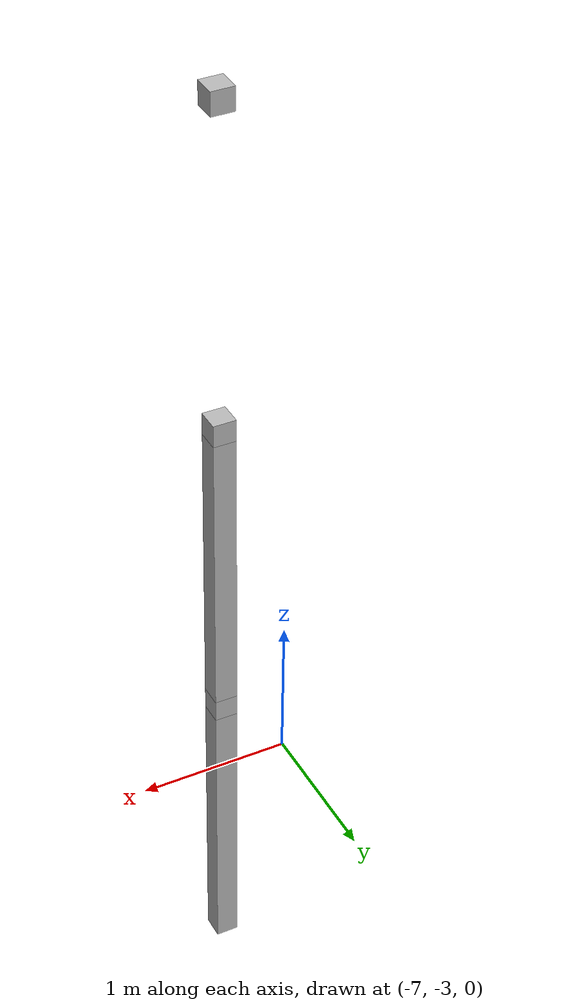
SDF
<sdf version="1.7">
 <world name="default">
  <model name="orthogonal_747_2.000.15_TS">
   <static>1</static>
   <link name="u_link_1_1_0">
    <inertial>
     <mass>1</mass>
     <inertia>
      <ixx>0.166667</ixx>
      <ixy>0</ixy>
      <ixz>0</ixz>
      <iyy>0.166667</iyy>
      <iyz>0</iyz>
      <izz>0.166667</izz>
     </inertia>
    </inertial>
    <pose>0 2.15 3.225 0 -0 0</pose>
    <visual name="visual_0">
     <laser_retro>981</laser_retro>
     <geometry><box><size>0.15 1e-06 0.15</size></box></geometry>
     <material>
      <script><name>Gazebo/Grey</name><uri>file://media/materials/scripts/gazebo.material</uri></script>
      <shader type="pixel"><normal_map>__default__</normal_map></shader>
      <ambient>0.678 0.498 0.659 1</ambient>
      <diffuse>0.7 0.7 0.7 1</diffuse>
      <specular>0.01 0.01 0.01 1</specular>
      <emissive>0 0 0 1</emissive>
     </material>
     <pose>0 -0.075 0 0 -0 0</pose>
     <transparency>1</transparency>
    </visual>
    <visual name="visual_1">
     <laser_retro>982</laser_retro>
     <geometry><box><size>0.15 1e-06 0.15</size></box></geometry>
     <material>
      <script><name>Gazebo/Grey</name><uri>file://media/materials/scripts/gazebo.material</uri></script>
      <shader type="pixel"><normal_map>__default__</normal_map></shader>
      <ambient>0.447 0.624 0.812 1</ambient>
      <diffuse>0.7 0.7 0.7 1</diffuse>
      <specular>0.01 0.01 0.01 1</specular>
      <emissive>0 0 0 1</emissive>
     </material>
     <pose>0 0.075 0 0 -0 0</pose>
     <transparency>1</transparency>
    </visual>
    <visual name="visual_2">
     <laser_retro>983</laser_retro>
     <geometry><box><size>0.15 0.15 1e-06</size></box></geometry>
     <material>
      <script><name>Gazebo/Grey</name><uri>file://media/materials/scripts/gazebo.material</uri></script>
      <shader type="pixel"><normal_map>__default__</normal_map></shader>
      <ambient>0.988 0.686 0.243 1</ambient>
      <diffuse>0.7 0.7 0.7 1</diffuse>
      <specular>0.01 0.01 0.01 1</specular>
      <emissive>0 0 0 1</emissive>
     </material>
     <pose>0 0 -0.075 0 -0 0</pose>
     <transparency>1</transparency>
    </visual>
    <visual name="visual_3">
     <laser_retro>984</laser_retro>
     <geometry><box><size>1e-06 0.15 0.15</size></box></geometry>
     <material>
      <script><name>Gazebo/Grey</name><uri>file://media/materials/scripts/gazebo.material</uri></script>
      <shader type="pixel"><normal_map>__default__</normal_map></shader>
      <ambient>0.988 0.914 0.31 1</ambient>
      <diffuse>0.7 0.7 0.7 1</diffuse>
      <specular>0.01 0.01 0.01 1</specular>
      <emissive>0 0 0 1</emissive>
     </material>
     <pose>0.075 0 0 0 -0 0</pose>
     <transparency>1</transparency>
    </visual>
    <visual name="visual_4">
     <laser_retro>985</laser_retro>
     <geometry><box><size>0.15 0.15 1e-06</size></box></geometry>
     <material>
      <script><name>Gazebo/Grey</name><uri>file://media/materials/scripts/gazebo.material</uri></script>
      <shader type="pixel"><normal_map>__default__</normal_map></shader>
      <ambient>0.937 0.161 0.161 1</ambient>
      <diffuse>0.7 0.7 0.7 1</diffuse>
      <specular>0.01 0.01 0.01 1</specular>
      <emissive>0 0 0 1</emissive>
     </material>
     <pose>0 0 0.075 0 -0 0</pose>
     <transparency>1</transparency>
    </visual>
    <visual name="visual_5">
     <laser_retro>986</laser_retro>
     <geometry><box><size>1e-06 0.15 0.15</size></box></geometry>
     <material>
      <script><name>Gazebo/Grey</name><uri>file://media/materials/scripts/gazebo.material</uri></script>
      <shader type="pixel"><normal_map>__default__</normal_map></shader>
      <ambient>0.541 0.886 0.204 1</ambient>
      <diffuse>0.7 0.7 0.7 1</diffuse>
      <specular>0.01 0.01 0.01 1</specular>
      <emissive>0 0 0 1</emissive>
     </material>
     <pose>-0.075 0 0 0 -0 0</pose>
     <transparency>1</transparency>
    </visual>
    <visual name="visual_texture">
     <geometry><box><size>0.149985 0.149985 0.149985</size></box></geometry>
     <material>
      <script>
       <uri>model://BASE_MODELS/simple_block_v2_textured/materials/scripts</uri>
       <uri>model://BASE_MODELS/simple_block_v2_textured/materials/textures</uri>
       <name>metal</name>
      </script>
     </material>
     <laser_retro>987</laser_retro>
    </visual>
    <collision name="collision">
     <geometry><box><size>0.15 0.15 0.15</size></box></geometry>
     <surface>
      <friction>
       <ode><mu>1</mu><mu2>1</mu2><fdir1>0 0 0</fdir1><slip1>0</slip1><slip2>0</slip2></ode>
       <torsional>
        <coefficient>1</coefficient>
        <patch_radius>0</patch_radius>
        <surface_radius>0</surface_radius>
        <use_patch_radius>1</use_patch_radius>
        <ode><slip>0</slip></ode>
       </torsional>
      </friction>
      <bounce><restitution_coefficient>0</restitution_coefficient><threshold>1e+06</threshold></bounce>
      <contact>
       <collide_without_contact>0</collide_without_contact>
       <collide_without_contact_bitmask>1</collide_without_contact_bitmask>
       <collide_bitmask>1</collide_bitmask>
       <ode>
        <soft_cfm>0</soft_cfm>
        <soft_erp>0.2</soft_erp>
        <kp>1e+13</kp>
        <kd>1</kd>
        <max_vel>0.01</max_vel>
        <min_depth>0</min_depth>
       </ode>
       <bullet>
        <split_impulse>1</split_impulse>
        <split_impulse_penetration_threshold>-0.01</split_impulse_penetration_threshold>
        <soft_cfm>0</soft_cfm>
        <soft_erp>0.2</soft_erp>
        <kp>1e+13</kp>
        <kd>1</kd>
       </bullet>
      </contact>
     </surface>
    </collision>
   </link>
   <link name="z_link_1_1_0">
    <inertial>
     <mass>1</mass>
     <inertia>
      <ixx>0.166667</ixx>
      <ixy>0</ixy>
      <ixz>0</ixz>
      <iyy>0.166667</iyy>
      <iyz>0</iyz>
      <izz>0.166667</izz>
     </inertia>
    </inertial>
    <pose>0 2.15 2.15 0 -0 0</pose>
    <visual name="visual_0">
     <laser_retro>988</laser_retro>
     <geometry><box><size>0.15 1e-06 2</size></box></geometry>
     <material>
      <script><name>Gazebo/Grey</name><uri>file://media/materials/scripts/gazebo.material</uri></script>
      <shader type="pixel"><normal_map>__default__</normal_map></shader>
      <ambient>0.678 0.498 0.659 1</ambient>
      <diffuse>0.7 0.7 0.7 1</diffuse>
      <specular>0.01 0.01 0.01 1</specular>
      <emissive>0 0 0 1</emissive>
     </material>
     <pose>0 -0.075 0 0 -0 0</pose>
     <transparency>1</transparency>
    </visual>
    <visual name="visual_1">
     <laser_retro>989</laser_retro>
     <geometry><box><size>0.15 1e-06 2</size></box></geometry>
     <material>
      <script><name>Gazebo/Grey</name><uri>file://media/materials/scripts/gazebo.material</uri></script>
      <shader type="pixel"><normal_map>__default__</normal_map></shader>
      <ambient>0.447 0.624 0.812 1</ambient>
      <diffuse>0.7 0.7 0.7 1</diffuse>
      <specular>0.01 0.01 0.01 1</specular>
      <emissive>0 0 0 1</emissive>
     </material>
     <pose>0 0.075 0 0 -0 0</pose>
     <transparency>1</transparency>
    </visual>
    <visual name="visual_2">
     <laser_retro>990</laser_retro>
     <geometry><box><size>0.15 0.15 1e-06</size></box></geometry>
     <material>
      <script><name>Gazebo/Grey</name><uri>file://media/materials/scripts/gazebo.material</uri></script>
      <shader type="pixel"><normal_map>__default__</normal_map></shader>
      <ambient>0.988 0.686 0.243 1</ambient>
      <diffuse>0.7 0.7 0.7 1</diffuse>
      <specular>0.01 0.01 0.01 1</specular>
      <emissive>0 0 0 1</emissive>
     </material>
     <pose>0 0 -1 0 -0 0</pose>
     <transparency>1</transparency>
    </visual>
    <visual name="visual_3">
     <laser_retro>991</laser_retro>
     <geometry><box><size>1e-06 0.15 2</size></box></geometry>
     <material>
      <script><name>Gazebo/Grey</name><uri>file://media/materials/scripts/gazebo.material</uri></script>
      <shader type="pixel"><normal_map>__default__</normal_map></shader>
      <ambient>0.988 0.914 0.31 1</ambient>
      <diffuse>0.7 0.7 0.7 1</diffuse>
      <specular>0.01 0.01 0.01 1</specular>
      <emissive>0 0 0 1</emissive>
     </material>
     <pose>0.075 0 0 0 -0 0</pose>
     <transparency>1</transparency>
    </visual>
    <visual name="visual_4">
     <laser_retro>992</laser_retro>
     <geometry><box><size>0.15 0.15 1e-06</size></box></geometry>
     <material>
      <script><name>Gazebo/Grey</name><uri>file://media/materials/scripts/gazebo.material</uri></script>
      <shader type="pixel"><normal_map>__default__</normal_map></shader>
      <ambient>0.937 0.161 0.161 1</ambient>
      <diffuse>0.7 0.7 0.7 1</diffuse>
      <specular>0.01 0.01 0.01 1</specular>
      <emissive>0 0 0 1</emissive>
     </material>
     <pose>0 0 1 0 -0 0</pose>
     <transparency>1</transparency>
    </visual>
    <visual name="visual_5">
     <laser_retro>993</laser_retro>
     <geometry><box><size>1e-06 0.15 2</size></box></geometry>
     <material>
      <script><name>Gazebo/Grey</name><uri>file://media/materials/scripts/gazebo.material</uri></script>
      <shader type="pixel"><normal_map>__default__</normal_map></shader>
      <ambient>0.541 0.886 0.204 1</ambient>
      <diffuse>0.7 0.7 0.7 1</diffuse>
      <specular>0.01 0.01 0.01 1</specular>
      <emissive>0 0 0 1</emissive>
     </material>
     <pose>-0.075 0 0 0 -0 0</pose>
     <transparency>1</transparency>
    </visual>
    <visual name="visual_texture">
     <geometry><box><size>0.149985 0.149985 1.9998</size></box></geometry>
     <material>
      <script>
       <uri>model://BASE_MODELS/simple_block_v2_textured/materials/scripts</uri>
       <uri>model://BASE_MODELS/simple_block_v2_textured/materials/textures</uri>
       <name>metal</name>
      </script>
     </material>
     <laser_retro>994</laser_retro>
    </visual>
    <collision name="collision">
     <geometry><box><size>0.15 0.15 2</size></box></geometry>
     <surface>
      <friction>
       <ode><mu>1</mu><mu2>1</mu2><fdir1>0 0 0</fdir1><slip1>0</slip1><slip2>0</slip2></ode>
       <torsional>
        <coefficient>1</coefficient>
        <patch_radius>0</patch_radius>
        <surface_radius>0</surface_radius>
        <use_patch_radius>1</use_patch_radius>
        <ode><slip>0</slip></ode>
       </torsional>
      </friction>
      <bounce><restitution_coefficient>0</restitution_coefficient><threshold>1e+06</threshold></bounce>
      <contact>
       <collide_without_contact>0</collide_without_contact>
       <collide_without_contact_bitmask>1</collide_without_contact_bitmask>
       <collide_bitmask>1</collide_bitmask>
       <ode>
        <soft_cfm>0</soft_cfm>
        <soft_erp>0.2</soft_erp>
        <kp>1e+13</kp>
        <kd>1</kd>
        <max_vel>0.01</max_vel>
        <min_depth>0</min_depth>
       </ode>
       <bullet>
        <split_impulse>1</split_impulse>
        <split_impulse_penetration_threshold>-0.01</split_impulse_penetration_threshold>
        <soft_cfm>0</soft_cfm>
        <soft_erp>0.2</soft_erp>
        <kp>1e+13</kp>
        <kd>1</kd>
       </bullet>
      </contact>
     </surface>
    </collision>
   </link>
   <link name="u_link_2_1_0">
    <inertial>
     <mass>1</mass>
     <inertia>
      <ixx>0.166667</ixx>
      <ixy>0</ixy>
      <ixz>0</ixz>
      <iyy>0.166667</iyy>
      <iyz>0</iyz>
      <izz>0.166667</izz>
     </inertia>
    </inertial>
    <pose>0 2.15 5.375 0 -0 0</pose>
    <visual name="visual_0">
     <laser_retro>1884</laser_retro>
     <geometry><box><size>0.15 1e-06 0.15</size></box></geometry>
     <material>
      <script><name>Gazebo/Grey</name><uri>file://media/materials/scripts/gazebo.material</uri></script>
      <shader type="pixel"><normal_map>__default__</normal_map></shader>
      <ambient>0.678 0.498 0.659 1</ambient>
      <diffuse>0.7 0.7 0.7 1</diffuse>
      <specular>0.01 0.01 0.01 1</specular>
      <emissive>0 0 0 1</emissive>
     </material>
     <pose>0 -0.075 0 0 -0 0</pose>
     <transparency>1</transparency>
    </visual>
    <visual name="visual_1">
     <laser_retro>1885</laser_retro>
     <geometry><box><size>0.15 1e-06 0.15</size></box></geometry>
     <material>
      <script><name>Gazebo/Grey</name><uri>file://media/materials/scripts/gazebo.material</uri></script>
      <shader type="pixel"><normal_map>__default__</normal_map></shader>
      <ambient>0.447 0.624 0.812 1</ambient>
      <diffuse>0.7 0.7 0.7 1</diffuse>
      <specular>0.01 0.01 0.01 1</specular>
      <emissive>0 0 0 1</emissive>
     </material>
     <pose>0 0.075 0 0 -0 0</pose>
     <transparency>1</transparency>
    </visual>
    <visual name="visual_2">
     <laser_retro>1886</laser_retro>
     <geometry><box><size>0.15 0.15 1e-06</size></box></geometry>
     <material>
      <script><name>Gazebo/Grey</name><uri>file://media/materials/scripts/gazebo.material</uri></script>
      <shader type="pixel"><normal_map>__default__</normal_map></shader>
      <ambient>0.988 0.686 0.243 1</ambient>
      <diffuse>0.7 0.7 0.7 1</diffuse>
      <specular>0.01 0.01 0.01 1</specular>
      <emissive>0 0 0 1</emissive>
     </material>
     <pose>0 0 -0.075 0 -0 0</pose>
     <transparency>1</transparency>
    </visual>
    <visual name="visual_3">
     <laser_retro>1887</laser_retro>
     <geometry><box><size>1e-06 0.15 0.15</size></box></geometry>
     <material>
      <script><name>Gazebo/Grey</name><uri>file://media/materials/scripts/gazebo.material</uri></script>
      <shader type="pixel"><normal_map>__default__</normal_map></shader>
      <ambient>0.988 0.914 0.31 1</ambient>
      <diffuse>0.7 0.7 0.7 1</diffuse>
      <specular>0.01 0.01 0.01 1</specular>
      <emissive>0 0 0 1</emissive>
     </material>
     <pose>0.075 0 0 0 -0 0</pose>
     <transparency>1</transparency>
    </visual>
    <visual name="visual_4">
     <laser_retro>1888</laser_retro>
     <geometry><box><size>0.15 0.15 1e-06</size></box></geometry>
     <material>
      <script><name>Gazebo/Grey</name><uri>file://media/materials/scripts/gazebo.material</uri></script>
      <shader type="pixel"><normal_map>__default__</normal_map></shader>
      <ambient>0.937 0.161 0.161 1</ambient>
      <diffuse>0.7 0.7 0.7 1</diffuse>
      <specular>0.01 0.01 0.01 1</specular>
      <emissive>0 0 0 1</emissive>
     </material>
     <pose>0 0 0.075 0 -0 0</pose>
     <transparency>1</transparency>
    </visual>
    <visual name="visual_5">
     <laser_retro>1889</laser_retro>
     <geometry><box><size>1e-06 0.15 0.15</size></box></geometry>
     <material>
      <script><name>Gazebo/Grey</name><uri>file://media/materials/scripts/gazebo.material</uri></script>
      <shader type="pixel"><normal_map>__default__</normal_map></shader>
      <ambient>0.541 0.886 0.204 1</ambient>
      <diffuse>0.7 0.7 0.7 1</diffuse>
      <specular>0.01 0.01 0.01 1</specular>
      <emissive>0 0 0 1</emissive>
     </material>
     <pose>-0.075 0 0 0 -0 0</pose>
     <transparency>1</transparency>
    </visual>
    <visual name="visual_texture">
     <geometry><box><size>0.149985 0.149985 0.149985</size></box></geometry>
     <material>
      <script>
       <uri>model://BASE_MODELS/simple_block_v2_textured/materials/scripts</uri>
       <uri>model://BASE_MODELS/simple_block_v2_textured/materials/textures</uri>
       <name>metal</name>
      </script>
     </material>
     <laser_retro>1890</laser_retro>
    </visual>
    <collision name="collision">
     <geometry><box><size>0.15 0.15 0.15</size></box></geometry>
     <surface>
      <friction>
       <ode><mu>1</mu><mu2>1</mu2><fdir1>0 0 0</fdir1><slip1>0</slip1><slip2>0</slip2></ode>
       <torsional>
        <coefficient>1</coefficient>
        <patch_radius>0</patch_radius>
        <surface_radius>0</surface_radius>
        <use_patch_radius>1</use_patch_radius>
        <ode><slip>0</slip></ode>
       </torsional>
      </friction>
      <bounce><restitution_coefficient>0</restitution_coefficient><threshold>1e+06</threshold></bounce>
      <contact>
       <collide_without_contact>0</collide_without_contact>
       <collide_without_contact_bitmask>1</collide_without_contact_bitmask>
       <collide_bitmask>1</collide_bitmask>
       <ode>
        <soft_cfm>0</soft_cfm>
        <soft_erp>0.2</soft_erp>
        <kp>1e+13</kp>
        <kd>1</kd>
        <max_vel>0.01</max_vel>
        <min_depth>0</min_depth>
       </ode>
       <bullet>
        <split_impulse>1</split_impulse>
        <split_impulse_penetration_threshold>-0.01</split_impulse_penetration_threshold>
        <soft_cfm>0</soft_cfm>
        <soft_erp>0.2</soft_erp>
        <kp>1e+13</kp>
        <kd>1</kd>
       </bullet>
      </contact>
     </surface>
    </collision>
   </link>
   <link name="z_link_2_1_0">
    <inertial>
     <mass>1</mass>
     <inertia>
      <ixx>0.166667</ixx>
      <ixy>0</ixy>
      <ixz>0</ixz>
      <iyy>0.166667</iyy>
      <iyz>0</iyz>
      <izz>0.166667</izz>
     </inertia>
    </inertial>
    <pose>0 2.15 4.3 0 -0 0</pose>
    <visual name="visual_0">
     <laser_retro>1891</laser_retro>
     <geometry><box><size>0.15 1e-06 2</size></box></geometry>
     <material>
      <script><name>Gazebo/Grey</name><uri>file://media/materials/scripts/gazebo.material</uri></script>
      <shader type="pixel"><normal_map>__default__</normal_map></shader>
      <ambient>0.678 0.498 0.659 1</ambient>
      <diffuse>0.7 0.7 0.7 1</diffuse>
      <specular>0.01 0.01 0.01 1</specular>
      <emissive>0 0 0 1</emissive>
     </material>
     <pose>0 -0.075 0 0 -0 0</pose>
     <transparency>1</transparency>
    </visual>
    <visual name="visual_1">
     <laser_retro>1892</laser_retro>
     <geometry><box><size>0.15 1e-06 2</size></box></geometry>
     <material>
      <script><name>Gazebo/Grey</name><uri>file://media/materials/scripts/gazebo.material</uri></script>
      <shader type="pixel"><normal_map>__default__</normal_map></shader>
      <ambient>0.447 0.624 0.812 1</ambient>
      <diffuse>0.7 0.7 0.7 1</diffuse>
      <specular>0.01 0.01 0.01 1</specular>
      <emissive>0 0 0 1</emissive>
     </material>
     <pose>0 0.075 0 0 -0 0</pose>
     <transparency>1</transparency>
    </visual>
    <visual name="visual_2">
     <laser_retro>1893</laser_retro>
     <geometry><box><size>0.15 0.15 1e-06</size></box></geometry>
     <material>
      <script><name>Gazebo/Grey</name><uri>file://media/materials/scripts/gazebo.material</uri></script>
      <shader type="pixel"><normal_map>__default__</normal_map></shader>
      <ambient>0.988 0.686 0.243 1</ambient>
      <diffuse>0.7 0.7 0.7 1</diffuse>
      <specular>0.01 0.01 0.01 1</specular>
      <emissive>0 0 0 1</emissive>
     </material>
     <pose>0 0 -1 0 -0 0</pose>
     <transparency>1</transparency>
    </visual>
    <visual name="visual_3">
     <laser_retro>1894</laser_retro>
     <geometry><box><size>1e-06 0.15 2</size></box></geometry>
     <material>
      <script><name>Gazebo/Grey</name><uri>file://media/materials/scripts/gazebo.material</uri></script>
      <shader type="pixel"><normal_map>__default__</normal_map></shader>
      <ambient>0.988 0.914 0.31 1</ambient>
      <diffuse>0.7 0.7 0.7 1</diffuse>
      <specular>0.01 0.01 0.01 1</specular>
      <emissive>0 0 0 1</emissive>
     </material>
     <pose>0.075 0 0 0 -0 0</pose>
     <transparency>1</transparency>
    </visual>
    <visual name="visual_4">
     <laser_retro>1895</laser_retro>
     <geometry><box><size>0.15 0.15 1e-06</size></box></geometry>
     <material>
      <script><name>Gazebo/Grey</name><uri>file://media/materials/scripts/gazebo.material</uri></script>
      <shader type="pixel"><normal_map>__default__</normal_map></shader>
      <ambient>0.937 0.161 0.161 1</ambient>
      <diffuse>0.7 0.7 0.7 1</diffuse>
      <specular>0.01 0.01 0.01 1</specular>
      <emissive>0 0 0 1</emissive>
     </material>
     <pose>0 0 1 0 -0 0</pose>
     <transparency>1</transparency>
    </visual>
    <visual name="visual_5">
     <laser_retro>1896</laser_retro>
     <geometry><box><size>1e-06 0.15 2</size></box></geometry>
     <material>
      <script><name>Gazebo/Grey</name><uri>file://media/materials/scripts/gazebo.material</uri></script>
      <shader type="pixel"><normal_map>__default__</normal_map></shader>
      <ambient>0.541 0.886 0.204 1</ambient>
      <diffuse>0.7 0.7 0.7 1</diffuse>
      <specular>0.01 0.01 0.01 1</specular>
      <emissive>0 0 0 1</emissive>
     </material>
     <pose>-0.075 0 0 0 -0 0</pose>
     <transparency>1</transparency>
    </visual>
    <visual name="visual_texture">
     <geometry><box><size>0.149985 0.149985 1.9998</size></box></geometry>
     <material>
      <script>
       <uri>model://BASE_MODELS/simple_block_v2_textured/materials/scripts</uri>
       <uri>model://BASE_MODELS/simple_block_v2_textured/materials/textures</uri>
       <name>metal</name>
      </script>
     </material>
     <laser_retro>1897</laser_retro>
    </visual>
    <collision name="collision">
     <geometry><box><size>0.15 0.15 2</size></box></geometry>
     <surface>
      <friction>
       <ode><mu>1</mu><mu2>1</mu2><fdir1>0 0 0</fdir1><slip1>0</slip1><slip2>0</slip2></ode>
       <torsional>
        <coefficient>1</coefficient>
        <patch_radius>0</patch_radius>
        <surface_radius>0</surface_radius>
        <use_patch_radius>1</use_patch_radius>
        <ode><slip>0</slip></ode>
       </torsional>
      </friction>
      <bounce><restitution_coefficient>0</restitution_coefficient><threshold>1e+06</threshold></bounce>
      <contact>
       <collide_without_contact>0</collide_without_contact>
       <collide_without_contact_bitmask>1</collide_without_contact_bitmask>
       <collide_bitmask>1</collide_bitmask>
       <ode>
        <soft_cfm>0</soft_cfm>
        <soft_erp>0.2</soft_erp>
        <kp>1e+13</kp>
        <kd>1</kd>
        <max_vel>0.01</max_vel>
        <min_depth>0</min_depth>
       </ode>
       <bullet>
        <split_impulse>1</split_impulse>
        <split_impulse_penetration_threshold>-0.01</split_impulse_penetration_threshold>
        <soft_cfm>0</soft_cfm>
        <soft_erp>0.2</soft_erp>
        <kp>1e+13</kp>
        <kd>1</kd>
       </bullet>
      </contact>
     </surface>
    </collision>
   </link>
   <link name="u_link_3_1_0">
    <inertial>
     <mass>1</mass>
     <inertia>
      <ixx>0.166667</ixx>
      <ixy>0</ixy>
      <ixz>0</ixz>
      <iyy>0.166667</iyy>
      <iyz>0</iyz>
      <izz>0.166667</izz>
     </inertia>
    </inertial>
    <pose>0 2.15 7.525 0 -0 0</pose>
    <visual name="visual_0">
     <laser_retro>2787</laser_retro>
     <geometry><box><size>0.15 1e-06 0.15</size></box></geometry>
     <material>
      <script><name>Gazebo/Grey</name><uri>file://media/materials/scripts/gazebo.material</uri></script>
      <shader type="pixel"><normal_map>__default__</normal_map></shader>
      <ambient>0.678 0.498 0.659 1</ambient>
      <diffuse>0.7 0.7 0.7 1</diffuse>
      <specular>0.01 0.01 0.01 1</specular>
      <emissive>0 0 0 1</emissive>
     </material>
     <pose>0 -0.075 0 0 -0 0</pose>
     <transparency>1</transparency>
    </visual>
    <visual name="visual_1">
     <laser_retro>2788</laser_retro>
     <geometry><box><size>0.15 1e-06 0.15</size></box></geometry>
     <material>
      <script><name>Gazebo/Grey</name><uri>file://media/materials/scripts/gazebo.material</uri></script>
      <shader type="pixel"><normal_map>__default__</normal_map></shader>
      <ambient>0.447 0.624 0.812 1</ambient>
      <diffuse>0.7 0.7 0.7 1</diffuse>
      <specular>0.01 0.01 0.01 1</specular>
      <emissive>0 0 0 1</emissive>
     </material>
     <pose>0 0.075 0 0 -0 0</pose>
     <transparency>1</transparency>
    </visual>
    <visual name="visual_2">
     <laser_retro>2789</laser_retro>
     <geometry><box><size>0.15 0.15 1e-06</size></box></geometry>
     <material>
      <script><name>Gazebo/Grey</name><uri>file://media/materials/scripts/gazebo.material</uri></script>
      <shader type="pixel"><normal_map>__default__</normal_map></shader>
      <ambient>0.988 0.686 0.243 1</ambient>
      <diffuse>0.7 0.7 0.7 1</diffuse>
      <specular>0.01 0.01 0.01 1</specular>
      <emissive>0 0 0 1</emissive>
     </material>
     <pose>0 0 -0.075 0 -0 0</pose>
     <transparency>1</transparency>
    </visual>
    <visual name="visual_3">
     <laser_retro>2790</laser_retro>
     <geometry><box><size>1e-06 0.15 0.15</size></box></geometry>
     <material>
      <script><name>Gazebo/Grey</name><uri>file://media/materials/scripts/gazebo.material</uri></script>
      <shader type="pixel"><normal_map>__default__</normal_map></shader>
      <ambient>0.988 0.914 0.31 1</ambient>
      <diffuse>0.7 0.7 0.7 1</diffuse>
      <specular>0.01 0.01 0.01 1</specular>
      <emissive>0 0 0 1</emissive>
     </material>
     <pose>0.075 0 0 0 -0 0</pose>
     <transparency>1</transparency>
    </visual>
    <visual name="visual_4">
     <laser_retro>2791</laser_retro>
     <geometry><box><size>0.15 0.15 1e-06</size></box></geometry>
     <material>
      <script><name>Gazebo/Grey</name><uri>file://media/materials/scripts/gazebo.material</uri></script>
      <shader type="pixel"><normal_map>__default__</normal_map></shader>
      <ambient>0.937 0.161 0.161 1</ambient>
      <diffuse>0.7 0.7 0.7 1</diffuse>
      <specular>0.01 0.01 0.01 1</specular>
      <emissive>0 0 0 1</emissive>
     </material>
     <pose>0 0 0.075 0 -0 0</pose>
     <transparency>1</transparency>
    </visual>
    <visual name="visual_5">
     <laser_retro>2792</laser_retro>
     <geometry><box><size>1e-06 0.15 0.15</size></box></geometry>
     <material>
      <script><name>Gazebo/Grey</name><uri>file://media/materials/scripts/gazebo.material</uri></script>
      <shader type="pixel"><normal_map>__default__</normal_map></shader>
      <ambient>0.541 0.886 0.204 1</ambient>
      <diffuse>0.7 0.7 0.7 1</diffuse>
      <specular>0.01 0.01 0.01 1</specular>
      <emissive>0 0 0 1</emissive>
     </material>
     <pose>-0.075 0 0 0 -0 0</pose>
     <transparency>1</transparency>
    </visual>
    <visual name="visual_texture">
     <geometry><box><size>0.149985 0.149985 0.149985</size></box></geometry>
     <material>
      <script>
       <uri>model://BASE_MODELS/simple_block_v2_textured/materials/scripts</uri>
       <uri>model://BASE_MODELS/simple_block_v2_textured/materials/textures</uri>
       <name>metal</name>
      </script>
     </material>
     <laser_retro>2793</laser_retro>
    </visual>
    <collision name="collision">
     <geometry><box><size>0.15 0.15 0.15</size></box></geometry>
     <surface>
      <friction>
       <ode><mu>1</mu><mu2>1</mu2><fdir1>0 0 0</fdir1><slip1>0</slip1><slip2>0</slip2></ode>
       <torsional>
        <coefficient>1</coefficient>
        <patch_radius>0</patch_radius>
        <surface_radius>0</surface_radius>
        <use_patch_radius>1</use_patch_radius>
        <ode><slip>0</slip></ode>
       </torsional>
      </friction>
      <bounce><restitution_coefficient>0</restitution_coefficient><threshold>1e+06</threshold></bounce>
      <contact>
       <collide_without_contact>0</collide_without_contact>
       <collide_without_contact_bitmask>1</collide_without_contact_bitmask>
       <collide_bitmask>1</collide_bitmask>
       <ode>
        <soft_cfm>0</soft_cfm>
        <soft_erp>0.2</soft_erp>
        <kp>1e+13</kp>
        <kd>1</kd>
        <max_vel>0.01</max_vel>
        <min_depth>0</min_depth>
       </ode>
       <bullet>
        <split_impulse>1</split_impulse>
        <split_impulse_penetration_threshold>-0.01</split_impulse_penetration_threshold>
        <soft_cfm>0</soft_cfm>
        <soft_erp>0.2</soft_erp>
        <kp>1e+13</kp>
        <kd>1</kd>
       </bullet>
      </contact>
     </surface>
    </collision>
   </link>
   <pose>-6.47624 -5 -2.5 0 -0 0</pose>
  </model>
 </world>
</sdf>
